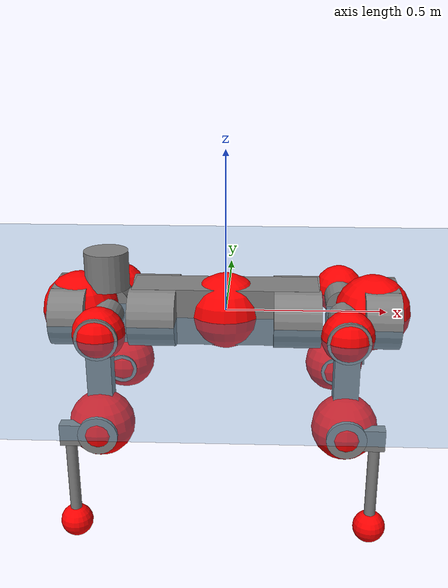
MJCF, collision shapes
<mujoco model="anymal_c">
  <compiler angle="radian" assetdir="assets" balanceinertia="true" inertiafromgeom="false"/>

  <option timestep="0.005" density="1.2" viscosity="2e-05"/>

  <size nkey="1"/>

  <visual>
    <quality shadowsize="8192"/>
    <map shadowclip="0.5"/>
  </visual>

  <default>
    <default class="/">
      <material specular="0" shininess="0.25"/>
      <geom contype="0" conaffinity="0" group="1" solref="-1000 -80"/>
      <site size="0.01 0.005 0.005" group="5"/>
      <general forcelimited="true" forcerange="-80 80" biastype="affine" gainprm="80" biasprm="0 -80 -2"/>
      <default class="anymal_c">
        <joint armature="0.01" damping="0.01" frictionloss="0.1"/>
        <default class="visual">
          <geom type="mesh" group="2"/>
          <default class="visual_zflip"/>
        </default>
        <default class="collision">
          <geom type="cylinder" group="3"/>
          <default class="foot">
            <geom size="0.03 0 0" type="sphere" condim="6" priority="1" friction="0.8 0.02 0.01" solimp="0.015 1 0.03"/>
          </default>
        </default>
      </default>
      <default class="reward_collision_sphere">
        <geom group="5" rgba="1 0 0 1"/>
      </default>
    </default>
  </default>

  <asset>
    <texture type="skybox" colorspace="auto" name="//unnamed_texture_0" builtin="gradient" rgb1="0.95 0.95 0.95" rgb2="0.95 0.95 0.95" width="100" height="600"/>
    <texture type="2d" colorspace="auto" name="texplane" builtin="checker" rgb1="0.345 0.575 0.748" rgb2="0.345 0.575 0.748" markrgb="1 1 1" width="512" height="512"/>
    <texture type="2d" colorspace="linear" name="base" file="base.png"/>
    <texture type="2d" colorspace="linear" name="top_shell" file="top_shell.png"/>
    <texture type="2d" colorspace="linear" name="bottom_shell" file="bottom_shell.png"/>
    <texture type="2d" colorspace="linear" name="remote" file="remote.png"/>
    <texture type="2d" colorspace="linear" name="hatch" file="hatch.png"/>
    <texture type="2d" colorspace="linear" name="handle" file="handle.png"/>
    <texture type="2d" colorspace="linear" name="face" file="face.png"/>
    <texture type="2d" colorspace="linear" name="battery" file="battery.png"/>
    <texture type="2d" colorspace="linear" name="lidar_cage" file="lidar_cage.png"/>
    <texture type="2d" colorspace="linear" name="depth_camera" file="depth_camera.png"/>
    <texture type="2d" colorspace="linear" name="wide_angle_camera" file="wide_angle_camera.png"/>
    <texture type="2d" colorspace="linear" name="lidar" file="lidar.png"/>
    <texture type="2d" colorspace="linear" name="drive" file="drive.png"/>
    <texture type="2d" colorspace="linear" name="hip_l" file="hip_l.png"/>
    <texture type="2d" colorspace="linear" name="shank_l" file="shank_l.png"/>
    <texture type="2d" colorspace="linear" name="foot" file="foot.png"/>
    <texture type="2d" colorspace="linear" name="thigh" file="thigh.png"/>
    <texture type="2d" colorspace="linear" name="shank_r" file="shank_r.png"/>
    <texture type="2d" colorspace="linear" name="hip_r" file="hip_r.png"/>
    <material name="MatPlane" class="/" texture="texplane" texuniform="true" texrepeat="2 2" specular="0.9" shininess="0.5"/>
    <material name="black_plastic" class="/" rgba="0.007 0.007 0.007 1"/>
    <material name="green" class="/" rgba="0.052 0.178 0.033 1"/>
    <material name="red" class="/" rgba="0.178 0.006 0.005 1"/>
    <material name="yellow" class="/" rgba="0.178 0.119 0.006 1"/>
    <material name="lwl" class="/" rgba="0.8 0.8 0.8 1"/>
    <material name="base" class="/" texture="base"/>
    <material name="top_shell" class="/" texture="top_shell"/>
    <material name="bottom_shell" class="/" texture="bottom_shell"/>
    <material name="hip_l" class="/" texture="hip_l"/>
    <material name="thigh" class="/" texture="thigh"/>
    <material name="shank_l" class="/" texture="shank_l"/>
    <material name="foot" class="/" texture="foot"/>
    <material name="hip_r" class="/" texture="hip_r"/>
    <material name="shank" class="/" texture="shank_r"/>
    <material name="hatch" class="/" texture="hatch"/>
    <material name="remote" class="/" texture="remote"/>
    <material name="handle" class="/" texture="handle"/>
    <material name="face" class="/" texture="face"/>
    <material name="depth_camera" class="/" texture="depth_camera"/>
    <material name="wide_angle_camera" class="/" texture="wide_angle_camera"/>
    <material name="battery" class="/" texture="battery"/>
    <material name="lidar_cage" class="/" texture="lidar_cage"/>
    <material name="lidar" class="/" texture="lidar"/>
    <material name="drive" class="/" texture="drive"/>
    <mesh name="base_0" class="/" file="base_0.obj"/>
    <mesh name="base_1" class="/" file="base_1.obj"/>
    <mesh name="base_2" class="/" file="base_2.obj"/>
    <mesh name="base_3" class="/" file="base_3.obj"/>
    <mesh name="base_4" class="/" file="base_4.obj"/>
    <mesh name="base_5" class="/" file="base_5.obj"/>
    <mesh name="top_shell" class="/" file="top_shell.obj"/>
    <mesh name="bottom_shell" class="/" file="bottom_shell.obj"/>
    <mesh name="remote" class="/" file="remote.obj"/>
    <mesh name="handle" class="/" file="handle.obj"/>
    <mesh name="face" class="/" file="face.obj"/>
    <mesh name="wide_angle_camera" class="/" file="wide_angle_camera.obj"/>
    <mesh name="depth_camera" class="/" file="depth_camera.obj"/>
    <mesh name="battery" class="/" file="battery.obj"/>
    <mesh name="lidar_cage" class="/" file="lidar_cage.obj"/>
    <mesh name="lidar" class="/" file="lidar.obj"/>
    <mesh name="drive" class="/" file="drive.obj"/>
    <mesh name="hip_l" class="/" file="hip_l.obj"/>
    <mesh name="thigh" class="/" file="thigh.obj"/>
    <mesh name="shank_l" class="/" file="shank_l.obj"/>
    <mesh name="foot" class="/" file="foot.obj"/>
    <mesh name="hip_r" class="/" file="hip_r.obj"/>
    <mesh name="hatch" class="/" file="hatch.obj"/>
    <mesh name="shank_r" class="/" file="shank_r.obj"/>
  </asset>

  <worldbody>
    <geom name="floor" class="/" size="100 100 0.125" type="plane" group="0" material="MatPlane"/>
    <light name="toplight_shadow" class="/" pos="0 0 5" dir="0.0990148 0.0990148 -0.990148" type="directional" ambient="0.04 0.04 0.04" diffuse="0.55 0.55 0.55" specular="0.12 0.12 0.12"/>
    <light name="toplight_fill" class="/" pos="0 0 5" dir="0.0990148 0.0990148 -0.990148" type="directional" castshadow="false" ambient="0.04 0.04 0.04" diffuse="0.3 0.3 0.3" specular="0.08 0.08 0.08"/>
    <body name="trunk" childclass="anymal_c" pos="-4.77691e-05 -0.000157087 -0.000553196" quat="1 -8.9629e-05 0.000237339 -0.000376265">
      <inertial pos="0.000666602 -0.00066126 0.0488571" quat="0.499938 0.499625 0.501337 0.499098" mass="18.3971" diaginertia="0.676588 0.518628 0.192391"/>
      <joint name="//unnamed_joint_0" type="free" armature="0" damping="0" frictionloss="0"/>
      <geom name="//unnamed_geom_1" class="visual" material="green" mesh="base_0"/>
      <geom name="//unnamed_geom_2" class="visual" material="yellow" mesh="base_1"/>
      <geom name="//unnamed_geom_3" class="visual" material="red" mesh="base_2"/>
      <geom name="//unnamed_geom_4" class="visual" material="black_plastic" mesh="base_3"/>
      <geom name="//unnamed_geom_5" class="visual" material="lwl" mesh="base_4"/>
      <geom name="//unnamed_geom_6" class="visual" material="base" mesh="base_5"/>
      <geom name="trunk_1" class="collision" size="0.285457 0.0689034 0.0885901" type="box"/>
      <geom name="trunk_2" class="collision" size="0.0885901 0.0713643" pos="0.220234 0.0675201 0" quat="0.707107 0 0.707107 0"/>
      <geom name="trunk_3" class="collision" size="0.0885901 0.0713643" pos="-0.220234 0.0675201 0" quat="0.707107 0 0.707107 0"/>
      <geom name="trunk_4" class="collision" size="0.0885901 0.0713643" pos="0.220234 -0.0675201 0" quat="0.707107 0 0.707107 0"/>
      <geom name="trunk_5" class="collision" size="0.0885901 0.0713643" pos="-0.220234 -0.0675201 0" quat="0.707107 0 0.707107 0"/>
      <geom name="//unnamed_geom_12" class="visual" material="top_shell" mesh="top_shell"/>
      <geom name="//unnamed_geom_13" class="visual" material="bottom_shell" mesh="bottom_shell"/>
      <geom name="//unnamed_geom_14" class="visual" material="remote" mesh="remote"/>
      <geom name="//unnamed_geom_15" class="visual" material="handle" mesh="handle"/>
      <geom name="//unnamed_geom_16" class="visual" pos="0.419711 0 0" quat="1 0 0 0" material="face" mesh="face"/>
      <geom name="trunk_6" class="collision" size="0.0541384 0.0689034 0.0885901" pos="0.475402 0 0" type="box"/>
      <geom name="//unnamed_geom_18" class="collision" size="0.0885901 0.0541384" pos="0.475402 0.0675201 0" quat="0.707107 0 0.707107 0"/>
      <geom name="//unnamed_geom_19" class="collision" size="0.0885901 0.0541384" pos="0.475402 -0.0675201 0" quat="0.707107 0 0.707107 0"/>
      <geom name="//unnamed_geom_20" class="visual" pos="0.467452 0 -0.0282161" quat="0.965926 0 0.258819 0" material="depth_camera" mesh="depth_camera"/>
      <geom name="//unnamed_geom_21" class="visual" pos="0.519449 0 0.0146086" material="wide_angle_camera" mesh="wide_angle_camera"/>
      <geom name="//unnamed_geom_22" class="visual_zflip" pos="-0.419711 0 0" quat="0 0 0 1" material="face" mesh="face"/>
      <geom name="trunk_7" class="collision" size="0.0541384 0.0689034 0.0885901" pos="-0.475402 0 0" quat="0 0 0 1" type="box"/>
      <geom name="//unnamed_geom_24" class="collision" size="0.0885901 0.0541384" pos="-0.475402 -0.0675201 0" quat="0 -0.707107 0 0.707107"/>
      <geom name="//unnamed_geom_25" class="collision" size="0.0885901 0.0541384" pos="-0.475402 0.0675201 0" quat="0 -0.707107 0 0.707107"/>
      <geom name="//unnamed_geom_26" class="visual" pos="-0.467452 0 -0.0282161" quat="0 -0.258819 0 0.965926" material="depth_camera" mesh="depth_camera"/>
      <geom name="//unnamed_geom_27" class="visual_zflip" pos="-0.519449 0 0.0146086" quat="0 0 0 1" material="wide_angle_camera" mesh="wide_angle_camera"/>
      <geom name="//unnamed_geom_28" class="visual" material="battery" mesh="battery"/>
      <geom name="//unnamed_geom_29" class="visual" pos="0 0.0731199 0.0286277" quat="0.683013 -0.183013 0.183013 0.683013" material="depth_camera" mesh="depth_camera"/>
      <geom name="//unnamed_geom_30" class="visual" pos="0 -0.0731199 0.0286277" quat="0.683013 0.183013 0.183013 -0.683013" material="depth_camera" mesh="depth_camera"/>
      <geom name="//unnamed_geom_31" class="visual" pos="-0.368576 0 0.0717257" quat="1 0 0 0" material="lidar_cage" mesh="lidar_cage"/>
      <geom name="trunk_8" class="collision" size="0.0689034 0.0590601" pos="-0.368576 0 0.130277"/>
      <geom name="//unnamed_geom_33" class="visual" pos="-0.368576 -1.88573e-05 0.138767" quat="0.707107 0 0 -0.707107" material="lidar" mesh="lidar"/>
      <geom name="//unnamed_geom_34" class="visual" pos="0.30367 0.10032 -1.94713e-10" quat="0.258819 0.965926 0 0" material="drive" mesh="drive"/>
      <geom name="//unnamed_geom_35" class="visual" pos="0.30367 -0.10032 1.94713e-10" quat="0.258819 -0.965926 0 0" material="drive" mesh="drive"/>
      <geom name="//unnamed_geom_36" class="visual" pos="-0.30367 0.10032 1.94713e-10" quat="0 0 0.965926 -0.258819" material="drive" mesh="drive"/>
      <geom name="//unnamed_geom_37" class="visual" pos="-0.30367 -0.10032 -1.94713e-10" quat="0 0 -0.965926 -0.258819" material="drive" mesh="drive"/>
      <geom name="//unnamed_geom_38" class="visual" pos="0.117458 0 0.0712378" quat="1 0 0 0" material="hatch" mesh="hatch"/>
      <geom name="//unnamed_geom_39" class="reward_collision_sphere" size="0.11812"/>
      <geom name="//unnamed_geom_40" class="reward_collision_sphere" size="0.11812" pos="0.455657 0 0"/>
      <geom name="//unnamed_geom_41" class="reward_collision_sphere" size="0.11812" pos="-0.455657 0 0"/>
      <site name="imu" pos="0.256656 0.00842865 0.0405476" size="0.00984335"/>
      <camera name="track" pos="0 -1.92915 0" quat="0.707107 0.707107 0 0" mode="trackcom"/>
      <camera name="ego_camera" pos="0.455657 0 -0.0390344" quat="-0.5 -0.5 0.5 0.5"/>
      <body name="LF_HIP" pos="0.304405 0.100958 0.000690232" quat="0.258768 0.965939 -0.000176941 -0.000147677">
        <inertial pos="0.0574551 -0.0141626 -0.00808802" quat="-0.127984 0.710126 -0.135451 0.678965" mass="2.56637" diaginertia="0.00611346 0.00401863 0.00284983"/>
        <joint name="LF_HAA" pos="0 0 0" axis="0.999999 -0.00122001 0.00116663" range="-0.717586 0.472843" armature="0.00969446" damping="0.00606694" frictionloss="0.101564"/>
        <geom name="//unnamed_geom_42" class="visual" pos="0 -1.14541e-05 1.88132e-06" quat="0.258819 -0.965926 0 0" material="hip_l" mesh="hip_l"/>
        <geom name="//unnamed_geom_43" class="visual" pos="0.060653 -0.0728661 -0.0421527" quat="0.183013 -0.683013 0.683013 0.183013" material="drive" mesh="drive"/>
        <geom name="//unnamed_geom_44" class="collision" size="0.0492167 0.0689034" pos="0.060653 -0.0115361 -0.00673831" quat="-0.353553 -0.612372 0.612372 -0.353553"/>
        <body name="LF_THIGH" pos="0.0619063 -0.0694054 -0.0417452" quat="0.182705 -0.683156 0.68296 0.182982">
          <inertial pos="0.0311105 2.91538e-05 -0.240652" quat="0.993191 -0.00561769 -0.0802741 0.0842334" mass="2.94279" diaginertia="0.0321139 0.0244851 0.00368609"/>
          <joint name="LF_HFE" pos="0 0 0" axis="0.999999 0.000810352 -0.00149344" stiffness="0.00361032" range="-3.13552 3.12434" armature="0.00978479" damping="0.00786591" frictionloss="0.102994"/>
          <geom name="//unnamed_geom_45" class="visual" pos="0.000954982 1.50483e-06 0" quat="0.707107 0 0 -0.707107" material="thigh" mesh="thigh"/>
          <geom name="//unnamed_geom_46" class="collision" size="0.0639818 0.0393734" pos="0.0405028 0 0" quat="0.5 0.5 -0.5 -0.5"/>
          <geom name="//unnamed_geom_47" class="collision" size="0.0369125 0.02953 0.1391" pos="0.0303771 0 -0.137903" quat="0.707107 0 0 -0.707107" type="box"/>
          <geom name="//unnamed_geom_48" class="visual" pos="0.101561 0 -0.27812" quat="1 0 0 0" material="drive" mesh="drive"/>
          <geom name="//unnamed_geom_49" class="collision" size="0.0492167 0.0689034" pos="0.0306809 0 -0.27812" quat="0.707107 0 0.707107 0"/>
          <geom name="//unnamed_geom_50" class="reward_collision_sphere" size="0.0787468" pos="0.0253143 0 0"/>
          <body name="LF_SHANK" pos="0.101666 0.000147293 -0.278644" quat="1 -3.44928e-06 5.40618e-05 5.54878e-05">
            <inertial pos="0.00532336 -0.0587251 -0.0778205" quat="0.992952 -0.115727 -0.00110218 -0.0255285" mass="0.558902" diaginertia="0.0107223 0.00768394 0.000988876"/>
            <joint name="LF_KFE" pos="0 0 0" axis="0.999995 -0.00246112 -0.00180839" range="-3.15461 3.14318" armature="0.00962585" damping="0.0106975" frictionloss="0.0987984"/>
            <geom name="//unnamed_geom_51" class="visual" pos="0.000311399 0.00166039 0" quat="0.707107 0 0 -0.707107" material="shank_l" mesh="shank_l"/>
            <geom name="LF_kfe_act" class="collision" size="0.0590601 0.0196867" pos="0.0202514 0 0" quat="0.5 0.5 -0.5 -0.5"/>
            <geom name="//unnamed_geom_53" class="collision" size="0.0565983 0.0332213 0.0187024" pos="0.0202514 -0.055462 0" quat="0.5 0.5 -0.5 -0.5" type="box"/>
            <geom name="//unnamed_geom_54" class="visual" pos="0.013214 -0.0842991 -0.329811" quat="0.382683 0 0 -0.92388" material="foot" mesh="foot"/>
            <geom name="LF_calf" class="collision" size="0.0172259 0.139039" pos="0.0132141 -0.0848342 -0.164906" quat="0.707107 0 0 -0.707107"/>
            <geom name="LF_foot" class="foot" size="0.0298126" pos="0.0132141 -0.0848342 -0.307855" quat="0.707107 0 0 -0.707107"/>
            <geom name="//unnamed_geom_57" class="reward_collision_sphere" size="0.0984335" pos="-0.0506286 0 0"/>
            <geom name="//unnamed_geom_58" class="reward_collision_sphere" size="0.0492167" pos="0.0132141 -0.0848342 -0.307855"/>
            <site name="LF_foot" class="foot" pos="0.0132141 -0.0848342 -0.307855" quat="0.707107 0 0 -0.707107" size="0.00984335"/>
          </body>
        </body>
      </body>
      <body name="RF_HIP" pos="0.303279 -0.100636 0.000517802" quat="0.258818 -0.965926 -5.71519e-06 -3.87135e-07">
        <inertial pos="0.0582924 0.0135302 -0.00751786" quat="0.128814 0.679341 0.130363 0.710569" mass="2.66987" diaginertia="0.00627815 0.00418013 0.00294009"/>
        <joint name="RF_HAA" pos="0 0 0" axis="0.999998 0.000174053 0.00195844" range="-0.482676 0.724978" armature="0.0100302" damping="0.00948101" frictionloss="0.0952114"/>
        <geom name="//unnamed_geom_59" class="visual" pos="0 1.1454e-05 1.88132e-06" quat="0.258819 0.965926 0 0" material="hip_r" mesh="hip_r"/>
        <geom name="//unnamed_geom_60" class="visual" pos="0.060653 0.0728661 -0.0421527" quat="0.183013 0.683013 0.683013 -0.183013" material="drive" mesh="drive"/>
        <geom name="//unnamed_geom_61" class="collision" size="0.0492167 0.0689034" pos="0.060653 0.0115361 -0.00673831" quat="-0.353553 0.612372 0.612372 0.353553"/>
        <body name="RF_THIGH" pos="0.060028 0.0706898 -0.0417554" quat="0.183015 0.683012 0.683013 -0.183012">
          <inertial pos="0.0323079 0.000291461 -0.238561" quat="0.992607 -0.00704817 -0.0842499 0.0870879" mass="2.90873" diaginertia="0.0323207 0.0247501 0.00372637"/>
          <joint name="RF_HFE" pos="0 0 0" axis="1 -4.03041e-06 1.02042e-05" stiffness="0.00791801" range="-3.15207 3.12973" armature="0.0101719" damping="0.0107112" frictionloss="0.0942941"/>
          <geom name="//unnamed_geom_62" class="visual" pos="0.000954982 1.50483e-06 0" quat="0.707107 0 0 -0.707107" material="thigh" mesh="thigh"/>
          <geom name="//unnamed_geom_63" class="collision" size="0.0639818 0.0393734" pos="0.0405028 0 0" quat="0.5 0.5 0.5 0.5"/>
          <geom name="//unnamed_geom_64" class="collision" size="0.0369125 0.02953 0.1391" pos="0.0303771 0 -0.137903" quat="0.707107 0 0 0.707107" type="box"/>
          <geom name="//unnamed_geom_65" class="visual" pos="0.101561 0 -0.27812" quat="1 0 0 0" material="drive" mesh="drive"/>
          <geom name="//unnamed_geom_66" class="collision" size="0.0492167 0.0689034" pos="0.0306809 0 -0.27812" quat="0.707107 0 0.707107 0"/>
          <geom name="//unnamed_geom_67" class="reward_collision_sphere" size="0.0787468" pos="0.0253143 0 0"/>
          <body name="RF_SHANK" pos="0.102227 0.000391425 -0.278032" quat="1 0.000266097 -4.04285e-05 -0.000318024">
            <inertial pos="0.00598724 0.0591758 -0.0785055" quat="0.992845 0.116614 -0.00750985 0.0245715" mass="0.554375" diaginertia="0.0106959 0.00779417 0.000990539"/>
            <joint name="RF_KFE" pos="0 0 0" axis="0.99999 0.00050707 0.00445586" range="-3.15267 3.15348" armature="0.00985548" damping="0.0130231" frictionloss="0.0939142"/>
            <geom name="//unnamed_geom_68" class="visual" pos="0.000311397 -0.00166039 0" quat="0.707107 0 0 0.707107" material="shank" mesh="shank_r"/>
            <geom name="RF_kfe_act" class="collision" size="0.0590601 0.0196867" pos="0.0202514 0 0" quat="0.5 0.5 0.5 0.5"/>
            <geom name="//unnamed_geom_70" class="collision" size="0.0565983 0.0332213 0.0187024" pos="0.0202514 0.055462 0" quat="0.5 0.5 0.5 0.5" type="box"/>
            <geom name="//unnamed_geom_71" class="visual" pos="0.0132141 0.0842991 -0.329811" quat="0.382683 0 0 0.92388" material="foot" mesh="foot"/>
            <geom name="RF_calf" class="collision" size="0.0172259 0.139039" pos="0.0132141 0.0848342 -0.164906" quat="0.707107 0 0 0.707107"/>
            <geom name="RF_foot" class="foot" size="0.0285509" pos="0.0132141 0.0848342 -0.307855" quat="0.707107 0 0 0.707107"/>
            <geom name="//unnamed_geom_74" class="reward_collision_sphere" size="0.0984335" pos="-0.0506286 0 0"/>
            <geom name="//unnamed_geom_75" class="reward_collision_sphere" size="0.0492167" pos="0.0132141 0.0848342 -0.307855"/>
            <site name="RF_foot" class="foot" pos="0.0132141 0.0848342 -0.307855" quat="0.707107 0 0 0.707107" size="0.00984335"/>
          </body>
        </body>
      </body>
      <body name="LH_HIP" pos="-0.302345 0.10105 -3.96642e-05" quat="-9.44123e-05 9.90365e-05 0.96598 -0.258616">
        <inertial pos="0.0575527 0.0139302 -0.00937215" quat="0.135274 0.679083 0.127989 0.710046" mass="2.68816" diaginertia="0.00645732 0.00414818 0.0029866"/>
        <joint name="LH_HAA" pos="0 0 0" axis="0.999997 0.00218654 -0.000684289" stiffness="0.00130528" range="-0.493179 0.708963" armature="0.00971149" damping="0.00274944" frictionloss="0.0984955"/>
        <geom name="//unnamed_geom_76" class="visual" pos="0 1.1454e-05 1.88132e-06" quat="-0.258819 -0.965926 0 0" material="hip_r" mesh="hip_r"/>
        <geom name="//unnamed_geom_77" class="visual" pos="0.060653 0.0728661 -0.0421527" quat="0.183013 0.683013 0.683013 -0.183013" material="drive" mesh="drive"/>
        <geom name="//unnamed_geom_78" class="collision" size="0.0492167 0.0689034" pos="0.060653 0.0115361 -0.00673831" quat="-0.353553 0.612372 0.612372 0.353553"/>
        <body name="LH_THIGH" pos="0.059947 0.0711188 -0.0418174" quat="0.182757 0.68322 0.682908 -0.182884">
          <inertial pos="0.0296538 -0.000506609 -0.240741" quat="0.992853 -0.00465867 -0.0806305 0.0878604" mass="2.9755" diaginertia="0.0317989 0.0249484 0.00369418"/>
          <joint name="LH_HFE" pos="0 0 0" axis="0.999999 -0.00143874 0.000316872" range="-3.12262 3.15286" armature="0.010053" damping="0.00970003" frictionloss="0.0985038"/>
          <geom name="//unnamed_geom_79" class="visual" pos="0.000954982 1.50483e-06 0" quat="0.707107 0 0 -0.707107" material="thigh" mesh="thigh"/>
          <geom name="//unnamed_geom_80" class="collision" size="0.0639818 0.0393734" pos="0.0405028 0 0" quat="0.5 0.5 -0.5 -0.5"/>
          <geom name="//unnamed_geom_81" class="collision" size="0.0369125 0.02953 0.1391" pos="0.0303771 0 -0.137903" quat="0.707107 0 0 -0.707107" type="box"/>
          <geom name="//unnamed_geom_82" class="visual" pos="0.101561 0 -0.27812" quat="1 0 0 0" material="drive" mesh="drive"/>
          <geom name="//unnamed_geom_83" class="collision" size="0.0492167 0.0689034" pos="0.0306809 0 -0.27812" quat="0.707107 0 0.707107 0"/>
          <geom name="//unnamed_geom_84" class="reward_collision_sphere" size="0.0787468" pos="0.0253143 0 0"/>
          <body name="LH_SHANK" pos="0.102098 -0.00097612 -0.277573" quat="1 -2.26477e-05 -6.2369e-05 -7.16328e-05">
            <inertial pos="0.00458536 0.0595077 -0.0782622" quat="0.993161 0.113271 -0.00163654 0.0282459" mass="0.572228" diaginertia="0.0111298 0.00791841 0.00100749"/>
            <joint name="LH_KFE" pos="0 0 0" axis="0.999994 0.0010615 -0.0032913" range="-3.13847 3.15145" armature="0.0103183" damping="0.011646" frictionloss="0.0975835"/>
            <geom name="//unnamed_geom_85" class="visual" pos="0.000311397 -0.00166039 0" quat="-0.707107 0 0 -0.707107" material="shank" mesh="shank_r"/>
            <geom name="LH_kfe_act" class="collision" size="0.0590601 0.0196867" pos="0.0202514 0 0" quat="0.5 0.5 -0.5 -0.5"/>
            <geom name="//unnamed_geom_87" class="collision" size="0.0565983 0.0332213 0.0187024" pos="0.0202514 0.055462 0" quat="0.5 0.5 -0.5 -0.5" type="box"/>
            <geom name="//unnamed_geom_88" class="visual" pos="0.0132141 0.0842991 -0.329811" quat="-0.382683 0 0 -0.92388" material="foot" mesh="foot"/>
            <geom name="LH_calf" class="collision" size="0.0172259 0.139039" pos="0.0132141 0.0848342 -0.164906" quat="0.707107 0 0 -0.707107"/>
            <geom name="LH_foot" class="foot" size="0.0293447" pos="0.0132141 0.0848342 -0.307855" quat="0.707107 0 0 -0.707107"/>
            <geom name="//unnamed_geom_91" class="reward_collision_sphere" size="0.0984335" pos="-0.0506286 0 0"/>
            <geom name="//unnamed_geom_92" class="reward_collision_sphere" size="0.0492167" pos="0.0132141 0.0848342 -0.307855"/>
            <site name="LH_foot" class="foot" pos="0.0132141 0.0848342 -0.307855" quat="0.707107 0 0 -0.707107" size="0.00984335"/>
          </body>
        </body>
      </body>
      <body name="RH_HIP" pos="-0.301998 -0.100035 -0.000523607" quat="-3.77987e-05 2.44865e-05 -0.965937 -0.258776">
        <inertial pos="0.0582381 -0.0157857 -0.00954544" quat="-0.127969 0.704674 -0.131655 0.685365" mass="2.60689" diaginertia="0.0061051 0.00403288 0.00285544"/>
        <joint name="RH_HAA" pos="0 0 0" axis="0.999983 0.00442713 -0.0036742" range="-0.737907 0.473205" armature="0.0102321" damping="0.0142664" frictionloss="0.0986399"/>
        <geom name="//unnamed_geom_93" class="visual" pos="0 -1.14541e-05 1.88132e-06" quat="-0.258819 0.965926 0 0" material="hip_l" mesh="hip_l"/>
        <geom name="//unnamed_geom_94" class="visual" pos="0.060653 -0.0728661 -0.0421527" quat="-0.183013 0.683013 -0.683013 -0.183013" material="drive" mesh="drive"/>
        <geom name="//unnamed_geom_95" class="collision" size="0.0492167 0.0689034" pos="0.060653 -0.0115361 -0.00673831" quat="0.353553 0.612372 -0.612372 0.353553"/>
        <body name="RH_THIGH" pos="0.0618074 -0.0708648 -0.0420704" quat="-0.18306 0.68299 -0.683021 -0.183019">
          <inertial pos="0.0311209 -0.000907863 -0.239429" quat="0.993111 -0.00552977 -0.0806397 0.0848405" mass="2.96618" diaginertia="0.0326007 0.0251858 0.0037177"/>
          <joint name="RH_HFE" pos="0 0 0" axis="0.999998 -0.000893846 -0.00168687" range="-3.15711 3.14484" armature="0.00959012" damping="0.00345401" frictionloss="0.0980856"/>
          <geom name="//unnamed_geom_96" class="visual" pos="0.000954982 1.50483e-06 0" quat="0.707107 0 0 -0.707107" material="thigh" mesh="thigh"/>
          <geom name="//unnamed_geom_97" class="collision" size="0.0639818 0.0393734" pos="0.0405028 0 0" quat="0.5 0.5 0.5 0.5"/>
          <geom name="//unnamed_geom_98" class="collision" size="0.0369125 0.02953 0.1391" pos="0.0303771 0 -0.137903" quat="0.707107 0 0 0.707107" type="box"/>
          <geom name="//unnamed_geom_99" class="visual" pos="0.101561 0 -0.27812" quat="1 0 0 0" material="drive" mesh="drive"/>
          <geom name="//unnamed_geom_100" class="collision" size="0.0492167 0.0689034" pos="0.0306809 0 -0.27812" quat="0.707107 0 0.707107 0"/>
          <geom name="//unnamed_geom_101" class="reward_collision_sphere" size="0.0787468" pos="0.0253143 0 0"/>
          <body name="RH_SHANK" pos="0.101677 0.000714778 -0.278468" quat="1 0.000226126 0.000305354 -0.000125003">
            <inertial pos="0.00574412 -0.0581101 -0.0787958" quat="0.993004 -0.115189 -0.0011535 -0.0259302" mass="0.565384" diaginertia="0.0109697 0.00771214 0.00100045"/>
            <joint name="RH_KFE" pos="0 0 0" axis="0.999999 -0.00101001 0.000694312" stiffness="0.0003706" range="-3.12733 3.1493" armature="0.00994798" damping="0.0129821" frictionloss="0.0939888"/>
            <geom name="//unnamed_geom_102" class="visual" pos="0.000311399 0.00166039 0" quat="0.707107 0 0 -0.707107" material="shank_l" mesh="shank_l"/>
            <geom name="RH_kfe_act" class="collision" size="0.0590601 0.0196867" pos="0.0202514 0 0" quat="0.5 0.5 0.5 0.5"/>
            <geom name="//unnamed_geom_104" class="collision" size="0.0565983 0.0332213 0.0187024" pos="0.0202514 -0.055462 0" quat="0.5 0.5 0.5 0.5" type="box"/>
            <geom name="//unnamed_geom_105" class="visual" pos="0.013214 -0.0842991 -0.329811" quat="0.382683 0 0 -0.92388" material="foot" mesh="foot"/>
            <geom name="RH_calf" class="collision" size="0.0172259 0.139039" pos="0.0132141 -0.0848342 -0.164906" quat="0.707107 0 0 0.707107"/>
            <geom name="RH_foot" class="foot" size="0.0286377" pos="0.0132141 -0.0848342 -0.307855" quat="0.707107 0 0 0.707107"/>
            <geom name="//unnamed_geom_108" class="reward_collision_sphere" size="0.0984335" pos="-0.0506286 0 0"/>
            <geom name="//unnamed_geom_109" class="reward_collision_sphere" size="0.0492167" pos="0.0132141 -0.0848342 -0.307855"/>
            <site name="RH_foot" class="foot" pos="0.0132141 -0.0848342 -0.307855" quat="0.707107 0 0 0.707107" size="0.00984335"/>
          </body>
        </body>
      </body>
    </body>
  </worldbody>

  <contact>
    <pair class="/" geom1="floor" geom2="LF_foot" name="//unnamed_contact_0"/>
    <pair class="/" geom1="floor" geom2="RF_foot" name="//unnamed_contact_1"/>
    <pair class="/" geom1="floor" geom2="LH_foot" name="//unnamed_contact_2"/>
    <pair class="/" geom1="floor" geom2="RH_foot" name="//unnamed_contact_3"/>
  </contact>

  <actuator>
    <general name="LF_HAA" class="/" joint="LF_HAA" forcerange="-80.2557 80.2557" gainprm="81.2274" biasprm="0 -81.2274 -1.92913"/>
    <general name="LF_HFE" class="/" joint="LF_HFE" forcerange="-75.6206 75.6206" gainprm="81.2274" biasprm="0 -81.2274 -1.92913"/>
    <general name="LF_KFE" class="/" joint="LF_KFE" forcerange="-79.9707 79.9707" gainprm="81.2274" biasprm="0 -81.2274 -1.92913"/>
    <general name="RF_HAA" class="/" joint="RF_HAA" forcerange="-78.4834 78.4834" gainprm="81.2274" biasprm="0 -81.2274 -1.92913"/>
    <general name="RF_HFE" class="/" joint="RF_HFE" forcerange="-79.4173 79.4173" gainprm="81.2274" biasprm="0 -81.2274 -1.92913"/>
    <general name="RF_KFE" class="/" joint="RF_KFE" forcerange="-77.6552 77.6552" gainprm="81.2274" biasprm="0 -81.2274 -1.92913"/>
    <general name="LH_HAA" class="/" joint="LH_HAA" forcerange="-79.6119 79.6119" gainprm="81.2274" biasprm="0 -81.2274 -1.92913"/>
    <general name="LH_HFE" class="/" joint="LH_HFE" forcerange="-80.6053 80.6053" gainprm="81.2274" biasprm="0 -81.2274 -1.92913"/>
    <general name="LH_KFE" class="/" joint="LH_KFE" forcerange="-76.9345 76.9345" gainprm="81.2274" biasprm="0 -81.2274 -1.92913"/>
    <general name="RH_HAA" class="/" joint="RH_HAA" forcerange="-78.7912 78.7912" gainprm="81.2274" biasprm="0 -81.2274 -1.92913"/>
    <general name="RH_HFE" class="/" joint="RH_HFE" forcerange="-80.6203 80.6203" gainprm="81.2274" biasprm="0 -81.2274 -1.92913"/>
    <general name="RH_KFE" class="/" joint="RH_KFE" forcerange="-79.8276 79.8276" gainprm="81.2274" biasprm="0 -81.2274 -1.92913"/>
  </actuator>

  <sensor>
    <gyro site="imu" name="imu_angular_velocity"/>
    <velocimeter site="imu" name="imu_linear_velocity"/>
    <framelinvel objtype="site" objname="LF_foot" name="LF_foot_global_linear_velocity"/>
    <framelinvel objtype="site" objname="RF_foot" name="RF_foot_global_linear_velocity"/>
    <framelinvel objtype="site" objname="LH_foot" name="LH_foot_global_linear_velocity"/>
    <framelinvel objtype="site" objname="RH_foot" name="RH_foot_global_linear_velocity"/>
  </sensor>

  <keyframe>
    <key name="home" qpos="0 0 0.55 1 0 0 0 0 0.4 -0.8 0 -0.4 0.8 0 -0.4 0.8 0 0.4 -0.8"/>
  </keyframe>
</mujoco>
